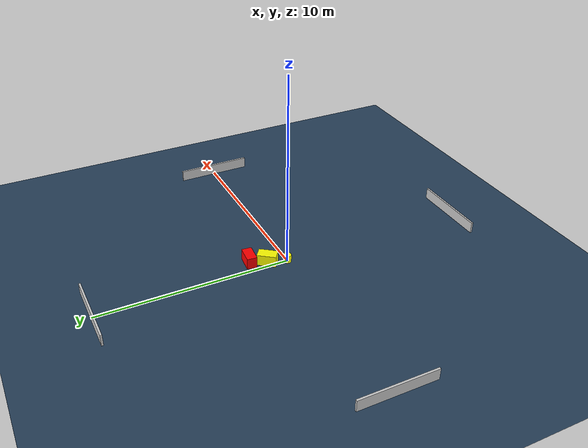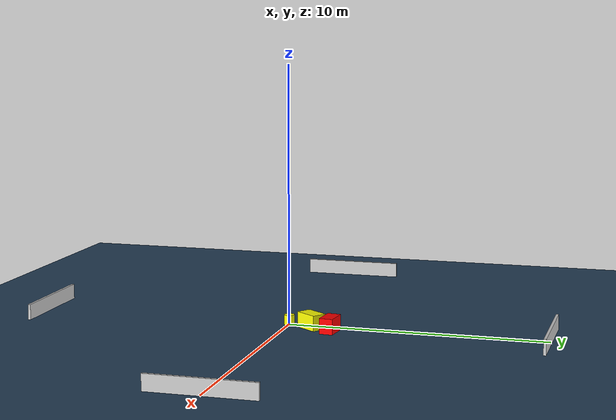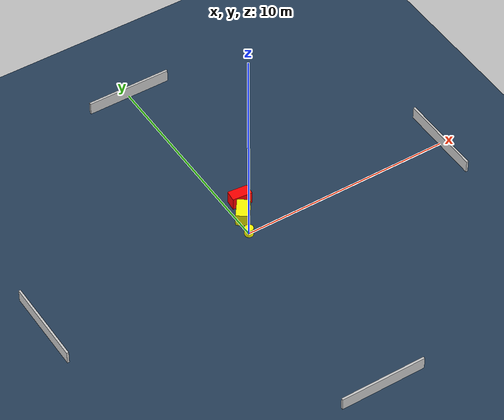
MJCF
<?xml version="1.0" ?>
<mujoco model="generated_environment">
  <option timestep="0.01" integrator="RK4" cone="elliptic"/>
  <default>
    <geom density="1"/>
  </default>
  <asset>
    <texture builtin="gradient" height="3072" name="skybox" rgb1="0.3 0.5 0.7" rgb2="0 0 0" type="skybox" width="512"/>
    <texture builtin="checker" height="300" name="groundplane" rgb1="0.2 0.3 0.4" rgb2="0.1 0.2 0.3" type="2d" width="300"/>
    <material name="groundplane" reflectance="0.2" texrepeat="5 5" texture="groundplane"/>
  </asset>
  <worldbody>
    <light dir="0 0 -1" directional="true" pos="0 0 1.5"/>
    <geom condim="3" friction="0.5 0.005 0.001" material="groundplane" name="floor" pos="0 0 0" size="0 0 0.05" type="plane"/>
    <body name="walls">
      <geom name="wall_1" condim="4" pos="-10.0 0.0 0.3" rgba="0.800000011920929 0.800000011920929 0.800000011920929 1.0" size="0.05 2.0 0.3" type="box"/>
      <geom name="wall_2" condim="4" pos="10.0 0.0 0.3" rgba="0.800000011920929 0.800000011920929 0.800000011920929 1.0" size="0.05 2.0 0.3" type="box"/>
      <geom name="wall_3" condim="4" pos="0.0 -10.0 0.3" rgba="0.800000011920929 0.800000011920929 0.800000011920929 1.0" size="2.0 0.05 0.3" type="box"/>
      <geom name="wall_4" condim="4" pos="0.0 10.0 0.3" rgba="0.800000011920929 0.800000011920929 0.800000011920929 1.0" size="2.0 0.05 0.3" type="box"/>
    </body>
    <body name="robot">
      <joint name="joint_x" type="slide" pos="0 0 0" axis="1 0 0"/>
      <joint name="joint_y" type="slide" pos="0 0 0" axis="0 1 0"/>
      <geom name="robot" type="cylinder" pos="0.0 0.0 0.2" size="0.2 0.2 0.0" mass="5.0" friction="1.0 0.005 0.0001" condim="4" rgba="1.0 1.0 0.0 1.0"/>
    </body>
    <body name="obstacle_1_movable">
      <geom name="obstacle_1_movable" condim="4" pos="0.310977750468327 0.9697028184886526 0.3" euler="0 0 143.3006010823384" friction="0.0 0.005 0.001" rgba="1.0 1.0 0.0 1.0" size="0.28859355187866764 0.48992738375073686 0.3" type="box" mass="0.1"/>
      <joint type="free"/>
    </body>
    <body name="obstacle_2_static">
      <geom name="obstacle_2_static" condim="4" pos="0.6848873433687674 1.7999147101145812 0.3" euler="0 0 174.4301694402868" friction="0.0 0.005 0.001" rgba="1.0 0.0 0.0 1.0" size="0.46506754046345405 0.26170358965593826 0.3" type="box"/>
    </body>
  </worldbody>
  <actuator>
    <motor name="actuator_x" joint="joint_x" gear="1" ctrlrange="-1 1"/>
    <motor name="actuator_y" joint="joint_y" gear="1" ctrlrange="-1 1"/>
  </actuator>
</mujoco>
